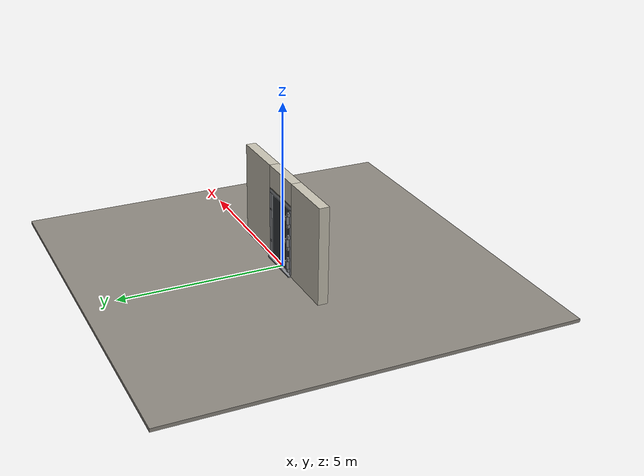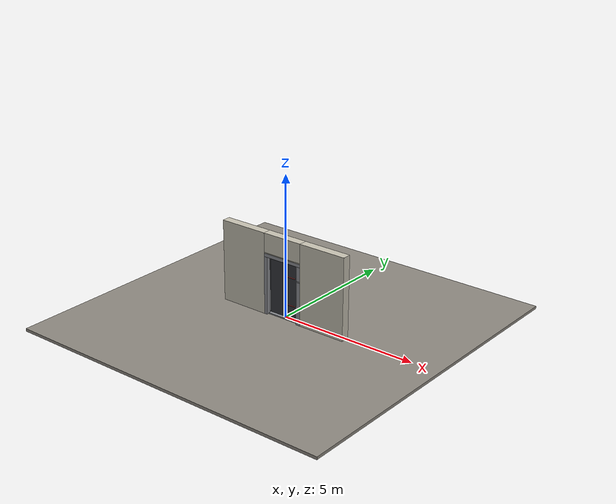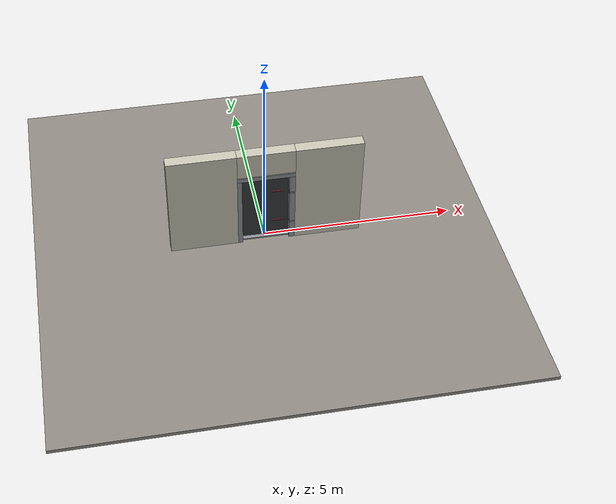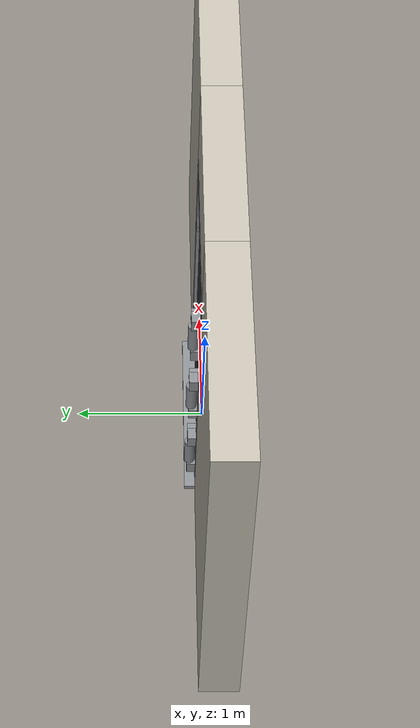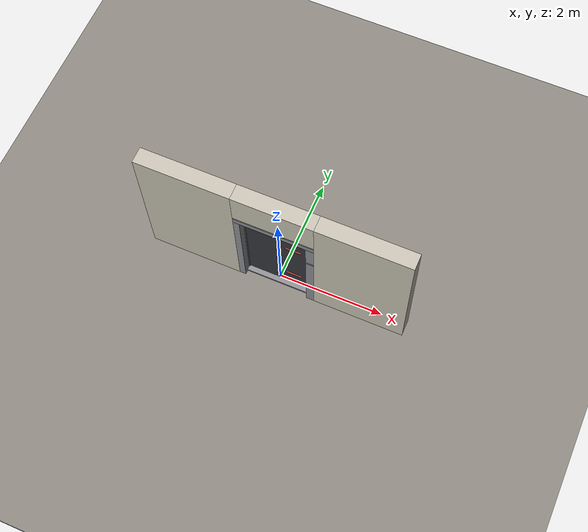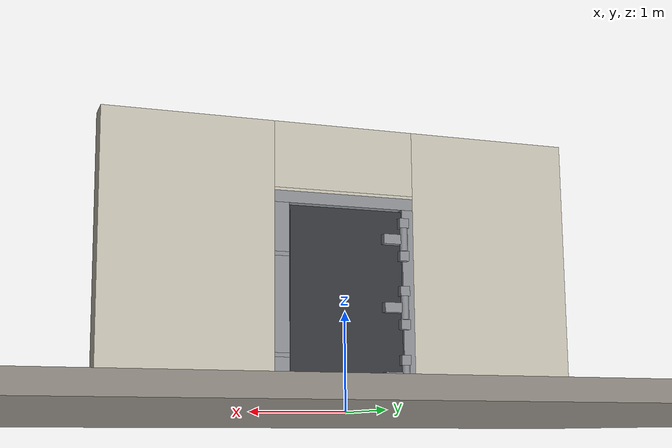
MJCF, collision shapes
<?xml version="1.0" ?>
<mujoco model="db0530_vault_simple">
  <compiler angle="radian" meshdir="../../hardware" texturedir="../../textures" autolimits="true" inertiafromgeom="false"/>
  <option timestep="0.002" integrator="implicitfast" cone="elliptic" impratio="10" noslip_iterations="3">
    <flag multiccd="enable"/>
  </option>
  <size memory="16M"/>
  <default>
    <geom condim="4" solref="0.005 1" solimp="0.95 0.99 0.001"/>
    <joint solreflimit="0.005 1" solimplimit="0.95 0.99 0.001"/>
    <tendon solreflimit="0.005 1"/>
    <equality solref="0.002 1"/>
  </default>
  <visual>
    <headlight ambient="0.4 0.4 0.4" diffuse="0.7 0.7 0.7" specular="0.2 0.2 0.2"/>
    <quality shadowsize="4096"/>
    <map znear="0.01" zfar="60"/>
  </visual>
  <asset>
    <mesh name="lever_c7a1f2892f" file="lever_c7a1f2892f.obj"/>
    <material name="mat_floor" rgba="0.55 0.53 0.5 1" specular="0.2" shininess="0.15" reflectance="0"/>
    <material name="mat_wall" rgba="0.78 0.76 0.7 1" specular="0.2" shininess="0.1" reflectance="0"/>
    <material name="mat_leaf" rgba="0.2 0.21 0.23 1" specular="0.23" shininess="0.36" reflectance="0.02"/>
    <material name="mat_op_steel_painted" rgba="0.45 0.48 0.52 1" specular="0.32" shininess="0.6" reflectance="0.08"/>
    <material name="mat_vault_bolt" rgba="0.75 0.76 0.77 1" specular="0.8" shininess="0.65" reflectance="0.4"/>
    <material name="mat_frame" rgba="0.55 0.56 0.58 1" specular="0.8" shininess="0.55" reflectance="0.4"/>
    <material name="mat_seal" rgba="0.1 0.1 0.1 1" specular="0.2" shininess="0.1" reflectance="0"/>
    <material name="mat_hinge" rgba="0.55 0.56 0.58 1" specular="0.8" shininess="0.55" reflectance="0.4"/>
    <texture name="skybox" type="skybox" builtin="gradient" rgb1="0.6 0.7 0.85" rgb2="0.9 0.92 0.95" width="256" height="256"/>
  </asset>
  <worldbody>
    <light name="sun" pos="1.5 -2.5 4" dir="-0.3 0.5 -0.8" directional="true" diffuse="0.8 0.8 0.8" specular="0.3 0.3 0.3" castshadow="true"/>
    <light name="fill" pos="-1.5 2.5 3" dir="0.3 -0.5 -0.7" directional="true" diffuse="0.35 0.35 0.4" castshadow="false"/>
    <camera name="robot_view" pos="0 -2.645625 1.753375" xyaxes="1 0 0 0 0.26963 0.962964" fovy="52"/>
    <camera name="far_view" pos="0 2.485625 1.753375" xyaxes="-1 0 0 0 -0.26963 0.962964" fovy="52"/>
    <camera name="iso" pos="1.949875 -2.235125 2.163875" xyaxes="0.741536 0.670913 0 -0.242917 0.268487 0.932151" fovy="46"/>
    <camera name="detail_handle" pos="0.406 -0.91 0.83" xyaxes="0.97561 0.219512 0 -0.070934 0.315262 0.94635" fovy="38"/>
    <geom name="floor" type="box" size="6 6 0.05" pos="0 0 -0.05" material="mat_floor" group="0" contype="1" conaffinity="1" friction="0.8 0.005 0.0001" density="2400"/>
    <geom name="wall_left" type="box" size="0.885 0.15 1.45" pos="-1.615 -0.08 1.45" material="mat_wall" group="0" contype="1" conaffinity="1" friction="0.6 0.005 0.0001" density="800"/>
    <geom name="wall_right" type="box" size="0.87 0.15 1.45" pos="1.63 -0.08 1.45" material="mat_wall" group="0" contype="1" conaffinity="1" friction="0.6 0.005 0.0001" density="800"/>
    <geom name="wall_header" type="box" size="0.745 0.15 0.34" pos="0.015 -0.08 2.56" material="mat_wall" group="0" contype="1" conaffinity="1" friction="0.6 0.005 0.0001" density="800"/>
    <geom name="jamb_hinge" type="box" size="0.06 0.15 1.035" pos="-0.67 -0.08 1.035" material="mat_frame" group="0" contype="1" conaffinity="1" friction="0.6 0.005 0.0001" density="300"/>
    <geom name="strike_550_wall_n" type="box" size="0.075 0.106 0.021" pos="0.685 -0.124 0.55" material="mat_frame" group="0" contype="1" conaffinity="1" friction="0.6 0.005 0.0001" density="300"/>
    <geom name="strike_550_wall_p" type="box" size="0.075 0.026 0.021" pos="0.685 0.044 0.55" material="mat_frame" group="0" contype="1" conaffinity="1" friction="0.6 0.005 0.0001" density="300"/>
    <geom name="strike_550_back" type="box" size="0.042 0.018 0.021" pos="0.718 0 0.55" material="mat_frame" group="0" contype="1" conaffinity="1" friction="0.6 0.005 0.0001" density="300"/>
    <geom name="strike_1550_wall_n" type="box" size="0.075 0.106 0.021" pos="0.685 -0.124 1.55" material="mat_frame" group="0" contype="1" conaffinity="1" friction="0.6 0.005 0.0001" density="300"/>
    <geom name="strike_1550_wall_p" type="box" size="0.075 0.026 0.021" pos="0.685 0.044 1.55" material="mat_frame" group="0" contype="1" conaffinity="1" friction="0.6 0.005 0.0001" density="300"/>
    <geom name="strike_1550_back" type="box" size="0.042 0.018 0.021" pos="0.718 0 1.55" material="mat_frame" group="0" contype="1" conaffinity="1" friction="0.6 0.005 0.0001" density="300"/>
    <geom name="jamb_strike_0" type="box" size="0.075 0.15 0.2645" pos="0.685 -0.08 0.2645" material="mat_frame" group="0" contype="1" conaffinity="1" friction="0.6 0.005 0.0001" density="300"/>
    <geom name="jamb_strike_1" type="box" size="0.075 0.15 0.479" pos="0.685 -0.08 1.05" material="mat_frame" group="0" contype="1" conaffinity="1" friction="0.6 0.005 0.0001" density="300"/>
    <geom name="jamb_strike_2" type="box" size="0.075 0.15 0.2495" pos="0.685 -0.08 1.8205" material="mat_frame" group="0" contype="1" conaffinity="1" friction="0.6 0.005 0.0001" density="300"/>
    <geom name="jamb_head" type="box" size="0.745 0.15 0.06" pos="0.015 -0.08 2.13" material="mat_frame" group="0" contype="1" conaffinity="1" friction="0.6 0.005 0.0001" density="300"/>
    <geom name="head_stud" type="box" size="0.745 0.15 0.015" pos="0.015 -0.08 2.205" material="mat_wall" group="0" contype="1" conaffinity="1" friction="0.6 0.005 0.0001" density="500"/>
    <geom name="stop_hinge" type="box" size="0.0055 0.016 1.035" pos="-0.6045 -0.0665 1.035" material="mat_frame" group="0" contype="1" conaffinity="1" friction="0.6 0.005 0.0001" density="300"/>
    <geom name="stop_strike" type="box" size="0.0055 0.016 1.035" pos="0.6045 -0.0665 1.035" material="mat_frame" group="0" contype="1" conaffinity="1" friction="0.6 0.005 0.0001" density="300"/>
    <geom name="stop_head" type="box" size="0.61 0.016 0.0055" pos="0 -0.0665 2.0645" material="mat_frame" group="0" contype="1" conaffinity="1" friction="0.6 0.005 0.0001" density="300"/>
    <geom name="seal_hinge" type="box" size="0.004 0.006 1.035" pos="-0.607 -0.056 1.035" material="mat_seal" group="1" contype="0" conaffinity="0" density="1100"/>
    <geom name="seal_strike" type="box" size="0.004 0.006 1.035" pos="0.607 -0.056 1.035" material="mat_seal" group="1" contype="0" conaffinity="0" density="1100"/>
    <geom name="seal_head" type="box" size="0.59 0.006 0.008" pos="0 -0.056 2.058" material="mat_seal" group="1" contype="0" conaffinity="0" density="1100"/>
    <geom name="sill_step" type="box" size="0.73 0.15 0.02" pos="0 0 0.02" material="mat_frame" group="0" contype="1" conaffinity="1" friction="0.6 0.005 0.0001" density="7850"/>
    <geom name="hinge_0_bracket_b" type="box" size="0.05 0.0325 0.05" pos="-0.604 0.1025 0.18" material="mat_hinge" group="1" contype="0" conaffinity="0" density="7850"/>
    <geom name="hinge_0_bracket_t" type="box" size="0.05 0.0325 0.05" pos="-0.604 0.1025 0.52" material="mat_hinge" group="1" contype="0" conaffinity="0" density="7850"/>
    <geom name="hinge_1_bracket_b" type="box" size="0.05 0.0325 0.05" pos="-0.604 0.1025 0.88" material="mat_hinge" group="1" contype="0" conaffinity="0" density="7850"/>
    <geom name="hinge_1_bracket_t" type="box" size="0.05 0.0325 0.05" pos="-0.604 0.1025 1.22" material="mat_hinge" group="1" contype="0" conaffinity="0" density="7850"/>
    <geom name="hinge_2_bracket_b" type="box" size="0.05 0.0325 0.05" pos="-0.604 0.1025 1.58" material="mat_hinge" group="1" contype="0" conaffinity="0" density="7850"/>
    <geom name="hinge_2_bracket_t" type="box" size="0.05 0.0325 0.05" pos="-0.604 0.1025 1.92" material="mat_hinge" group="1" contype="0" conaffinity="0" density="7850"/>
    <site name="approach_point" pos="0 -1.5 0" quat="1 0 0 0" size="0.05" rgba="0.2 0.9 0.2 0.5" group="4"/>
    <site name="goal_point" pos="0 1.5 0" quat="1 0 0 0" size="0.05" rgba="0.2 0.9 0.2 0.5" group="4"/>
    <site name="door_plane_center" pos="0 0 1.035" quat="1 0 0 0" size="0.02" rgba="0.2 0.9 0.2 0.5" group="4"/>
    <body name="leaf" pos="-0.61 0 0">
      <inertial pos="0.569795 0.006782 1.05" mass="997.001123" quat="0.506597 0.493315 -0.506597 0.493315" diaginertia="131.353031695 333.406611256 462.044085589"/>
      <joint name="leaf_hinge" type="hinge" axis="0 0 1" pos="0.006 0.115 0" limited="true" range="0 1.745329" solreflimit="0.02 1" damping="0.798984" frictionloss="31.960105" armature="0.5"/>
      <geom name="leaf_slab" type="box" size="0.6 0.05 1" pos="0.606 0 1.05" material="mat_leaf" group="0" contype="1" conaffinity="1" friction="0.45 0.005 0.0001" density="1"/>
      <geom name="hinge_0" type="cylinder" size="0.04 0.12" pos="0.006 0.115 0.35" material="mat_hinge" group="1" contype="0" conaffinity="0" density="7850"/>
      <geom name="hinge_0_arm" type="box" size="0.11 0.04 0.05" pos="0.116 0.09 0.35" material="mat_hinge" group="1" contype="0" conaffinity="0" density="7850"/>
      <geom name="hinge_1" type="cylinder" size="0.04 0.12" pos="0.006 0.115 1.05" material="mat_hinge" group="1" contype="0" conaffinity="0" density="7850"/>
      <geom name="hinge_1_arm" type="box" size="0.11 0.04 0.05" pos="0.116 0.09 1.05" material="mat_hinge" group="1" contype="0" conaffinity="0" density="7850"/>
      <geom name="hinge_2" type="cylinder" size="0.04 0.12" pos="0.006 0.115 1.75" material="mat_hinge" group="1" contype="0" conaffinity="0" density="7850"/>
      <geom name="hinge_2_arm" type="box" size="0.11 0.04 0.05" pos="0.116 0.09 1.75" material="mat_hinge" group="1" contype="0" conaffinity="0" density="7850"/>
      <body name="dog_0" pos="1.086 0 0.55">
        <inertial pos="-0.138181 -0.102433 0" mass="4.666646" quat="-0.044336 0 0 0.999017" diaginertia="0.001676913 0.056977311 0.05779918"/>
        <joint name="dog_0_hinge" type="hinge" axis="0 -1 0" limited="true" range="0 1.5708" damping="1" frictionloss="6" armature="0.005"/>
        <geom name="dog_0_lever" type="mesh" mesh="lever_c7a1f2892f" pos="0 -0.05 0" quat="0.707107 0.707107 0 0" material="mat_op_steel_painted" group="1" contype="0" conaffinity="0" density="7800"/>
        <geom name="dog_0_lever_col" type="capsule" size="0.015 0.14" pos="-0.15 -0.11 0" quat="0.707107 0 0.707107 0" material="mat_op_steel_painted" group="3" contype="1" conaffinity="1" rgba="0.8 0.3 0.3 0.25" friction="0.7 0.01 0.0001" density="7800"/>
        <site name="dog_0_grip" pos="-0.25 -0.11 0" quat="1 0 0 0" size="0.012" rgba="0.2 0.9 0.2 0.5" group="4"/>
      </body>
      <body name="bolt_0" pos="1.206 0 0.55">
        <inertial pos="-0.02 0 0" mass="0.942793" quat="0 0 0.707107 0.707107" diaginertia="0.00011723 0.001823954 0.001823954"/>
        <joint name="bolt_0_slide" type="slide" axis="-1 0 0" limited="true" range="0 0.06" damping="20" frictionloss="25" armature="0.1"/>
        <geom name="bolt_0_geom" type="capsule" size="0.016 0.064" pos="-0.02 0 0" quat="0.707107 0 0.707107 0" material="mat_vault_bolt" group="0" contype="1" conaffinity="1" friction="0.3 0.005 0.0001" density="7850"/>
      </body>
      <body name="dog_1" pos="1.086 0 1.55">
        <inertial pos="-0.138181 -0.102433 0" mass="4.666646" quat="-0.044336 0 0 0.999017" diaginertia="0.001676913 0.056977311 0.05779918"/>
        <joint name="dog_1_hinge" type="hinge" axis="0 -1 0" limited="true" range="0 1.5708" damping="1" frictionloss="6" armature="0.005"/>
        <geom name="dog_1_lever" type="mesh" mesh="lever_c7a1f2892f" pos="0 -0.05 0" quat="0.707107 0.707107 0 0" material="mat_op_steel_painted" group="1" contype="0" conaffinity="0" density="7800"/>
        <geom name="dog_1_lever_col" type="capsule" size="0.015 0.14" pos="-0.15 -0.11 0" quat="0.707107 0 0.707107 0" material="mat_op_steel_painted" group="3" contype="1" conaffinity="1" rgba="0.8 0.3 0.3 0.25" friction="0.7 0.01 0.0001" density="7800"/>
        <site name="dog_1_grip" pos="-0.25 -0.11 0" quat="1 0 0 0" size="0.012" rgba="0.2 0.9 0.2 0.5" group="4"/>
      </body>
      <body name="bolt_1" pos="1.206 0 1.55">
        <inertial pos="-0.02 0 0" mass="0.942793" quat="0 0 0.707107 0.707107" diaginertia="0.00011723 0.001823954 0.001823954"/>
        <joint name="bolt_1_slide" type="slide" axis="-1 0 0" limited="true" range="0 0.06" damping="20" frictionloss="25" armature="0.1"/>
        <geom name="bolt_1_geom" type="capsule" size="0.016 0.064" pos="-0.02 0 0" quat="0.707107 0 0.707107 0" material="mat_vault_bolt" group="0" contype="1" conaffinity="1" friction="0.3 0.005 0.0001" density="7850"/>
      </body>
    </body>
  </worldbody>
  <equality>
    <joint name="lever_bolt_0" joint1="bolt_0_slide" joint2="dog_0_hinge" polycoef="0 0.038197 0 0 0" active="true"/>
    <joint name="lever_bolt_1" joint1="bolt_1_slide" joint2="dog_1_hinge" polycoef="0 0.038197 0 0 0" active="true"/>
  </equality>
  <sensor>
    <jointpos name="leaf_hinge_pos" joint="leaf_hinge"/>
    <jointvel name="leaf_hinge_vel" joint="leaf_hinge"/>
    <jointpos name="dog_0_hinge_pos" joint="dog_0_hinge"/>
    <jointvel name="dog_0_hinge_vel" joint="dog_0_hinge"/>
    <jointpos name="bolt_0_slide_pos" joint="bolt_0_slide"/>
    <jointvel name="bolt_0_slide_vel" joint="bolt_0_slide"/>
    <jointpos name="dog_1_hinge_pos" joint="dog_1_hinge"/>
    <jointvel name="dog_1_hinge_vel" joint="dog_1_hinge"/>
    <jointpos name="bolt_1_slide_pos" joint="bolt_1_slide"/>
    <jointvel name="bolt_1_slide_vel" joint="bolt_1_slide"/>
  </sensor>
</mujoco>
